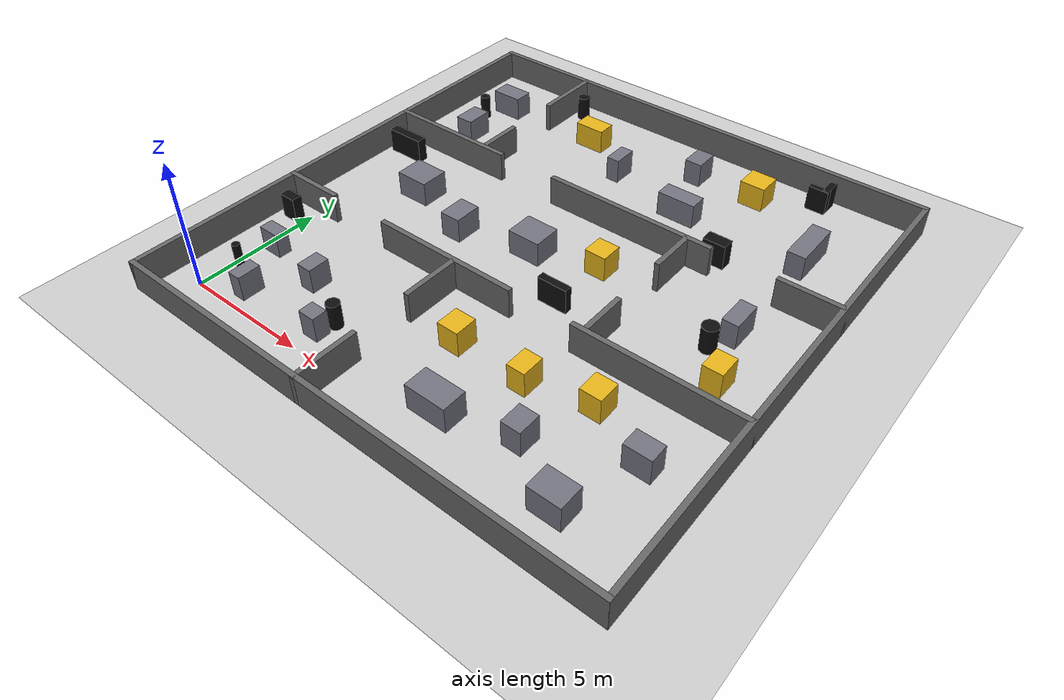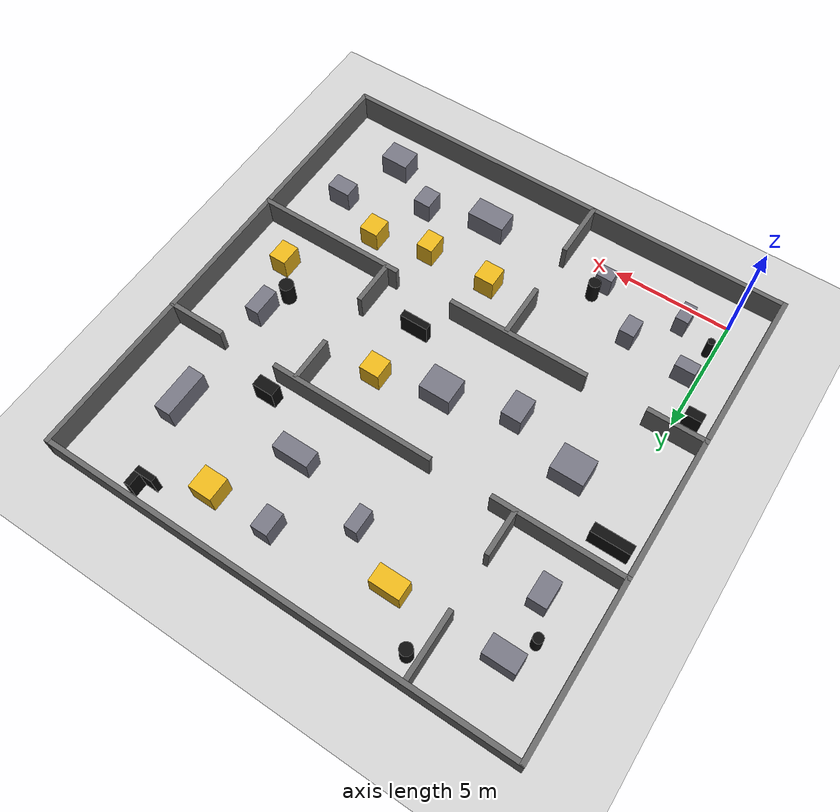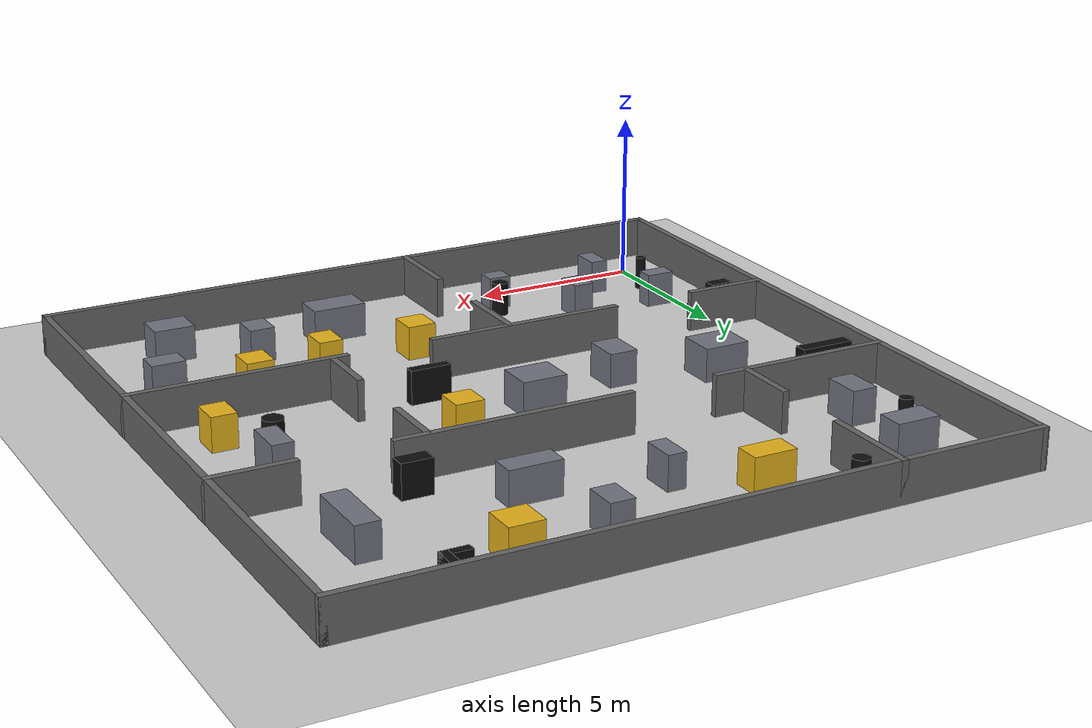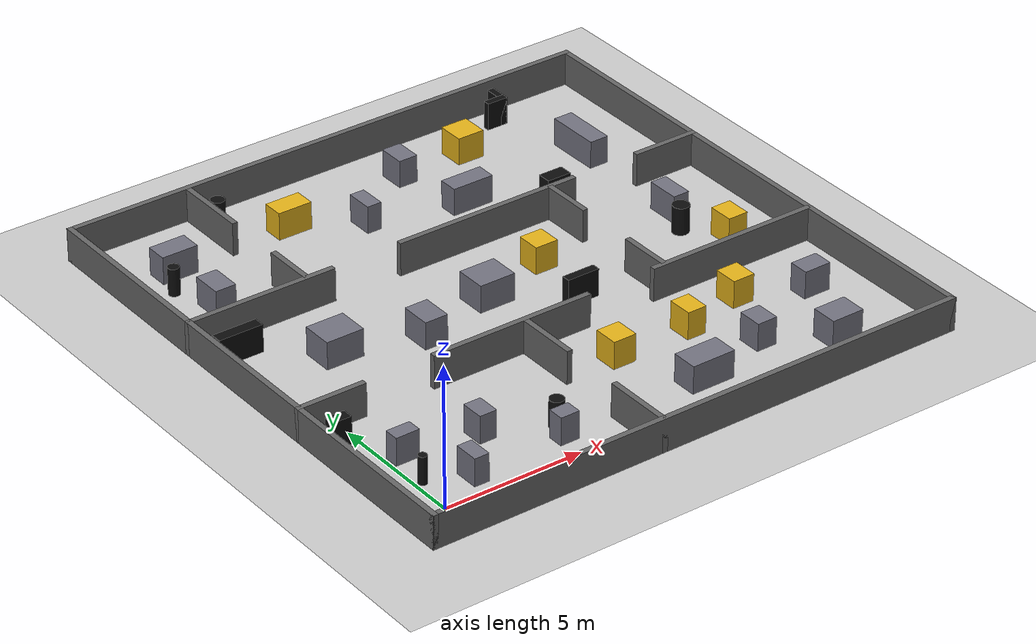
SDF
<?xml version="1.0"?>
<sdf version="1.8">
  <world name="bigarena">
    <physics name="10ms" type="ignored">
      <max_step_size>0.01</max_step_size>
      <real_time_factor>1.0</real_time_factor>
    </physics>
    <plugin filename="gz-sim-physics-system" name="gz::sim::systems::Physics"/>
    <plugin filename="gz-sim-user-commands-system" name="gz::sim::systems::UserCommands"/>
    <plugin filename="gz-sim-scene-broadcaster-system" name="gz::sim::systems::SceneBroadcaster"/>
    <plugin filename="gz-sim-sensors-system" name="gz::sim::systems::Sensors">
      <render_engine>ogre2</render_engine>
    </plugin>
    <light type="directional" name="sun">
      <cast_shadows>true</cast_shadows>
      <pose>0 0 10 0 0 0</pose>
      <diffuse>0.8 0.8 0.8 1</diffuse>
      <specular>0.2 0.2 0.2 1</specular>
      <direction>-0.5 0.1 -0.9</direction>
    </light>
    <model name="ground_plane">
      <static>true</static>
      <link name="link">
        <collision name="c">
          <geometry><plane><normal>0 0 1</normal><size>100 100</size></plane></geometry>
        </collision>
        <visual name="v">
          <geometry><plane><normal>0 0 1</normal><size>100 100</size></plane></geometry>
          <material><ambient>0.8 0.8 0.8 1</ambient><diffuse>0.8 0.8 0.8 1</diffuse></material>
        </visual>
      </link>
    </model>
    <model name="wall_0">
      <static>true</static>
      <pose>8.500 -1.400 0.600 0 0 0</pose>
      <link name="link">
        <collision name="c">
          <geometry><box><size>20.000 0.200 1.200</size></box></geometry>
        </collision>
        <visual name="v">
          <geometry><box><size>20.000 0.200 1.200</size></box></geometry>
          <material><ambient>0.4 0.4 0.4 1</ambient><diffuse>0.4 0.4 0.4 1</diffuse></material>
        </visual>
      </link>
    </model>
    <model name="wall_1">
      <static>true</static>
      <pose>8.500 18.400 0.600 0 0 0</pose>
      <link name="link">
        <collision name="c">
          <geometry><box><size>20.000 0.200 1.200</size></box></geometry>
        </collision>
        <visual name="v">
          <geometry><box><size>20.000 0.200 1.200</size></box></geometry>
          <material><ambient>0.4 0.4 0.4 1</ambient><diffuse>0.4 0.4 0.4 1</diffuse></material>
        </visual>
      </link>
    </model>
    <model name="wall_2">
      <static>true</static>
      <pose>-1.400 8.500 0.600 0 0 0</pose>
      <link name="link">
        <collision name="c">
          <geometry><box><size>0.200 20.000 1.200</size></box></geometry>
        </collision>
        <visual name="v">
          <geometry><box><size>0.200 20.000 1.200</size></box></geometry>
          <material><ambient>0.4 0.4 0.4 1</ambient><diffuse>0.4 0.4 0.4 1</diffuse></material>
        </visual>
      </link>
    </model>
    <model name="wall_3">
      <static>true</static>
      <pose>18.400 8.500 0.600 0 0 0</pose>
      <link name="link">
        <collision name="c">
          <geometry><box><size>0.200 20.000 1.200</size></box></geometry>
        </collision>
        <visual name="v">
          <geometry><box><size>0.200 20.000 1.200</size></box></geometry>
          <material><ambient>0.4 0.4 0.4 1</ambient><diffuse>0.4 0.4 0.4 1</diffuse></material>
        </visual>
      </link>
    </model>
    <model name="wall_4">
      <static>true</static>
      <pose>-0.250 5.500 0.600 0 0 0</pose>
      <link name="link">
        <collision name="c">
          <geometry><box><size>2.500 0.200 1.200</size></box></geometry>
        </collision>
        <visual name="v">
          <geometry><box><size>2.500 0.200 1.200</size></box></geometry>
          <material><ambient>0.4 0.4 0.4 1</ambient><diffuse>0.4 0.4 0.4 1</diffuse></material>
        </visual>
      </link>
    </model>
    <model name="wall_5">
      <static>true</static>
      <pose>6.500 5.500 0.600 0 0 0</pose>
      <link name="link">
        <collision name="c">
          <geometry><box><size>6.000 0.200 1.200</size></box></geometry>
        </collision>
        <visual name="v">
          <geometry><box><size>6.000 0.200 1.200</size></box></geometry>
          <material><ambient>0.4 0.4 0.4 1</ambient><diffuse>0.4 0.4 0.4 1</diffuse></material>
        </visual>
      </link>
    </model>
    <model name="wall_6">
      <static>true</static>
      <pose>15.250 5.500 0.600 0 0 0</pose>
      <link name="link">
        <collision name="c">
          <geometry><box><size>6.500 0.200 1.200</size></box></geometry>
        </collision>
        <visual name="v">
          <geometry><box><size>6.500 0.200 1.200</size></box></geometry>
          <material><ambient>0.4 0.4 0.4 1</ambient><diffuse>0.4 0.4 0.4 1</diffuse></material>
        </visual>
      </link>
    </model>
    <model name="wall_7">
      <static>true</static>
      <pose>1.250 11.500 0.600 0 0 0</pose>
      <link name="link">
        <collision name="c">
          <geometry><box><size>5.500 0.200 1.200</size></box></geometry>
        </collision>
        <visual name="v">
          <geometry><box><size>5.500 0.200 1.200</size></box></geometry>
          <material><ambient>0.4 0.4 0.4 1</ambient><diffuse>0.4 0.4 0.4 1</diffuse></material>
        </visual>
      </link>
    </model>
    <model name="wall_8">
      <static>true</static>
      <pose>10.000 11.500 0.600 0 0 0</pose>
      <link name="link">
        <collision name="c">
          <geometry><box><size>7.000 0.200 1.200</size></box></geometry>
        </collision>
        <visual name="v">
          <geometry><box><size>7.000 0.200 1.200</size></box></geometry>
          <material><ambient>0.4 0.4 0.4 1</ambient><diffuse>0.4 0.4 0.4 1</diffuse></material>
        </visual>
      </link>
    </model>
    <model name="wall_9">
      <static>true</static>
      <pose>17.250 11.500 0.600 0 0 0</pose>
      <link name="link">
        <collision name="c">
          <geometry><box><size>2.500 0.200 1.200</size></box></geometry>
        </collision>
        <visual name="v">
          <geometry><box><size>2.500 0.200 1.200</size></box></geometry>
          <material><ambient>0.4 0.4 0.4 1</ambient><diffuse>0.4 0.4 0.4 1</diffuse></material>
        </visual>
      </link>
    </model>
    <model name="wall_10">
      <static>true</static>
      <pose>7.000 -0.250 0.600 0 0 0</pose>
      <link name="link">
        <collision name="c">
          <geometry><box><size>0.200 2.500 1.200</size></box></geometry>
        </collision>
        <visual name="v">
          <geometry><box><size>0.200 2.500 1.200</size></box></geometry>
          <material><ambient>0.4 0.4 0.4 1</ambient><diffuse>0.4 0.4 0.4 1</diffuse></material>
        </visual>
      </link>
    </model>
    <model name="wall_11">
      <static>true</static>
      <pose>7.000 4.350 0.600 0 0 0</pose>
      <link name="link">
        <collision name="c">
          <geometry><box><size>0.200 2.300 1.200</size></box></geometry>
        </collision>
        <visual name="v">
          <geometry><box><size>0.200 2.300 1.200</size></box></geometry>
          <material><ambient>0.4 0.4 0.4 1</ambient><diffuse>0.4 0.4 0.4 1</diffuse></material>
        </visual>
      </link>
    </model>
    <model name="wall_12">
      <static>true</static>
      <pose>12.500 6.450 0.600 0 0 0</pose>
      <link name="link">
        <collision name="c">
          <geometry><box><size>0.200 1.900 1.200</size></box></geometry>
        </collision>
        <visual name="v">
          <geometry><box><size>0.200 1.900 1.200</size></box></geometry>
          <material><ambient>0.4 0.4 0.4 1</ambient><diffuse>0.4 0.4 0.4 1</diffuse></material>
        </visual>
      </link>
    </model>
    <model name="wall_13">
      <static>true</static>
      <pose>12.500 10.550 0.600 0 0 0</pose>
      <link name="link">
        <collision name="c">
          <geometry><box><size>0.200 1.900 1.200</size></box></geometry>
        </collision>
        <visual name="v">
          <geometry><box><size>0.200 1.900 1.200</size></box></geometry>
          <material><ambient>0.4 0.4 0.4 1</ambient><diffuse>0.4 0.4 0.4 1</diffuse></material>
        </visual>
      </link>
    </model>
    <model name="wall_14">
      <static>true</static>
      <pose>3.000 12.450 0.600 0 0 0</pose>
      <link name="link">
        <collision name="c">
          <geometry><box><size>0.200 1.900 1.200</size></box></geometry>
        </collision>
        <visual name="v">
          <geometry><box><size>0.200 1.900 1.200</size></box></geometry>
          <material><ambient>0.4 0.4 0.4 1</ambient><diffuse>0.4 0.4 0.4 1</diffuse></material>
        </visual>
      </link>
    </model>
    <model name="wall_15">
      <static>true</static>
      <pose>3.000 17.050 0.600 0 0 0</pose>
      <link name="link">
        <collision name="c">
          <geometry><box><size>0.200 2.900 1.200</size></box></geometry>
        </collision>
        <visual name="v">
          <geometry><box><size>0.200 2.900 1.200</size></box></geometry>
          <material><ambient>0.4 0.4 0.4 1</ambient><diffuse>0.4 0.4 0.4 1</diffuse></material>
        </visual>
      </link>
    </model>
    <model name="known_obs_0">
      <static>true</static>
      <pose>7.882 8.641 0.500 0 0 0</pose>
      <link name="link">
        <collision name="c">
          <geometry><box><size>1.324 1.116 1.000</size></box></geometry>
        </collision>
        <visual name="v">
          <geometry><box><size>1.324 1.116 1.000</size></box></geometry>
          <material><ambient>0.45 0.45 0.5 1</ambient><diffuse>0.45 0.45 0.5 1</diffuse></material>
        </visual>
      </link>
    </model>
    <model name="known_obs_1">
      <static>true</static>
      <pose>10.838 13.774 0.500 0 0 0</pose>
      <link name="link">
        <collision name="c">
          <geometry><box><size>1.540 0.703 1.000</size></box></geometry>
        </collision>
        <visual name="v">
          <geometry><box><size>1.540 0.703 1.000</size></box></geometry>
          <material><ambient>0.45 0.45 0.5 1</ambient><diffuse>0.45 0.45 0.5 1</diffuse></material>
        </visual>
      </link>
    </model>
    <model name="known_obs_2">
      <static>true</static>
      <pose>0.572 2.924 0.500 0 0 0</pose>
      <link name="link">
        <collision name="c">
          <geometry><box><size>0.852 0.517 1.000</size></box></geometry>
        </collision>
        <visual name="v">
          <geometry><box><size>0.852 0.517 1.000</size></box></geometry>
          <material><ambient>0.45 0.45 0.5 1</ambient><diffuse>0.45 0.45 0.5 1</diffuse></material>
        </visual>
      </link>
    </model>
    <model name="known_obs_3">
      <static>true</static>
      <pose>7.430 14.664 0.500 0 0 0</pose>
      <link name="link">
        <collision name="c">
          <geometry><box><size>0.533 0.987 1.000</size></box></geometry>
        </collision>
        <visual name="v">
          <geometry><box><size>0.533 0.987 1.000</size></box></geometry>
          <material><ambient>0.45 0.45 0.5 1</ambient><diffuse>0.45 0.45 0.5 1</diffuse></material>
        </visual>
      </link>
    </model>
    <model name="known_obs_4">
      <static>true</static>
      <pose>0.764 13.293 0.500 0 0 0</pose>
      <link name="link">
        <collision name="c">
          <geometry><box><size>0.753 1.104 1.000</size></box></geometry>
        </collision>
        <visual name="v">
          <geometry><box><size>0.753 1.104 1.000</size></box></geometry>
          <material><ambient>0.45 0.45 0.5 1</ambient><diffuse>0.45 0.45 0.5 1</diffuse></material>
        </visual>
      </link>
    </model>
    <model name="known_obs_5">
      <static>true</static>
      <pose>13.145 1.624 0.500 0 0 0</pose>
      <link name="link">
        <collision name="c">
          <geometry><box><size>0.739 0.866 1.000</size></box></geometry>
        </collision>
        <visual name="v">
          <geometry><box><size>0.739 0.866 1.000</size></box></geometry>
          <material><ambient>0.45 0.45 0.5 1</ambient><diffuse>0.45 0.45 0.5 1</diffuse></material>
        </visual>
      </link>
    </model>
    <model name="known_obs_6">
      <static>true</static>
      <pose>15.852 14.220 0.500 0 0 0</pose>
      <link name="link">
        <collision name="c">
          <geometry><box><size>0.701 1.986 1.000</size></box></geometry>
        </collision>
        <visual name="v">
          <geometry><box><size>0.701 1.986 1.000</size></box></geometry>
          <material><ambient>0.45 0.45 0.5 1</ambient><diffuse>0.45 0.45 0.5 1</diffuse></material>
        </visual>
      </link>
    </model>
    <model name="known_obs_7">
      <static>true</static>
      <pose>16.427 3.039 0.500 0 0 0</pose>
      <link name="link">
        <collision name="c">
          <geometry><box><size>0.999 0.709 1.000</size></box></geometry>
        </collision>
        <visual name="v">
          <geometry><box><size>0.999 0.709 1.000</size></box></geometry>
          <material><ambient>0.45 0.45 0.5 1</ambient><diffuse>0.45 0.45 0.5 1</diffuse></material>
        </visual>
      </link>
    </model>
    <model name="known_obs_8">
      <static>true</static>
      <pose>10.460 0.944 0.500 0 0 0</pose>
      <link name="link">
        <collision name="c">
          <geometry><box><size>1.600 0.921 1.000</size></box></geometry>
        </collision>
        <visual name="v">
          <geometry><box><size>1.600 0.921 1.000</size></box></geometry>
          <material><ambient>0.45 0.45 0.5 1</ambient><diffuse>0.45 0.45 0.5 1</diffuse></material>
        </visual>
      </link>
    </model>
    <model name="known_obs_9">
      <static>true</static>
      <pose>3.146 2.553 0.500 0 0 0</pose>
      <link name="link">
        <collision name="c">
          <geometry><box><size>0.618 0.831 1.000</size></box></geometry>
        </collision>
        <visual name="v">
          <geometry><box><size>0.618 0.831 1.000</size></box></geometry>
          <material><ambient>0.45 0.45 0.5 1</ambient><diffuse>0.45 0.45 0.5 1</diffuse></material>
        </visual>
      </link>
    </model>
    <model name="known_obs_10">
      <static>true</static>
      <pose>2.176 8.797 0.500 0 0 0</pose>
      <link name="link">
        <collision name="c">
          <geometry><box><size>1.367 1.136 1.000</size></box></geometry>
        </collision>
        <visual name="v">
          <geometry><box><size>1.367 1.136 1.000</size></box></geometry>
          <material><ambient>0.45 0.45 0.5 1</ambient><diffuse>0.45 0.45 0.5 1</diffuse></material>
        </visual>
      </link>
    </model>
    <model name="known_obs_11">
      <static>true</static>
      <pose>15.802 9.401 0.500 0 0 0</pose>
      <link name="link">
        <collision name="c">
          <geometry><box><size>0.608 1.201 1.000</size></box></geometry>
        </collision>
        <visual name="v">
          <geometry><box><size>0.608 1.201 1.000</size></box></geometry>
          <material><ambient>0.45 0.45 0.5 1</ambient><diffuse>0.45 0.45 0.5 1</diffuse></material>
        </visual>
      </link>
    </model>
    <model name="known_obs_12">
      <static>true</static>
      <pose>5.003 7.910 0.500 0 0 0</pose>
      <link name="link">
        <collision name="c">
          <geometry><box><size>0.842 1.098 1.000</size></box></geometry>
        </collision>
        <visual name="v">
          <geometry><box><size>0.842 1.098 1.000</size></box></geometry>
          <material><ambient>0.45 0.45 0.5 1</ambient><diffuse>0.45 0.45 0.5 1</diffuse></material>
        </visual>
      </link>
    </model>
    <model name="known_obs_13">
      <static>true</static>
      <pose>15.343 0.400 0.500 0 0 0</pose>
      <link name="link">
        <collision name="c">
          <geometry><box><size>1.196 0.923 1.000</size></box></geometry>
        </collision>
        <visual name="v">
          <geometry><box><size>1.196 0.923 1.000</size></box></geometry>
          <material><ambient>0.45 0.45 0.5 1</ambient><diffuse>0.45 0.45 0.5 1</diffuse></material>
        </visual>
      </link>
    </model>
    <model name="known_obs_14">
      <static>true</static>
      <pose>0.806 15.832 0.500 0 0 0</pose>
      <link name="link">
        <collision name="c">
          <geometry><box><size>1.307 0.789 1.000</size></box></geometry>
        </collision>
        <visual name="v">
          <geometry><box><size>1.307 0.789 1.000</size></box></geometry>
          <material><ambient>0.45 0.45 0.5 1</ambient><diffuse>0.45 0.45 0.5 1</diffuse></material>
        </visual>
      </link>
    </model>
    <model name="known_obs_15">
      <static>true</static>
      <pose>10.039 16.438 0.500 0 0 0</pose>
      <link name="link">
        <collision name="c">
          <geometry><box><size>0.703 0.970 1.000</size></box></geometry>
        </collision>
        <visual name="v">
          <geometry><box><size>0.703 0.970 1.000</size></box></geometry>
          <material><ambient>0.45 0.45 0.5 1</ambient><diffuse>0.45 0.45 0.5 1</diffuse></material>
        </visual>
      </link>
    </model>
    <model name="known_obs_16">
      <static>true</static>
      <pose>5.068 0.912 0.500 0 0 0</pose>
      <link name="link">
        <collision name="c">
          <geometry><box><size>0.682 0.571 1.000</size></box></geometry>
        </collision>
        <visual name="v">
          <geometry><box><size>0.682 0.571 1.000</size></box></geometry>
          <material><ambient>0.45 0.45 0.5 1</ambient><diffuse>0.45 0.45 0.5 1</diffuse></material>
        </visual>
      </link>
    </model>
    <model name="known_obs_17">
      <static>true</static>
      <pose>1.638 0.844 0.500 0 0 0</pose>
      <link name="link">
        <collision name="c">
          <geometry><box><size>0.529 0.881 1.000</size></box></geometry>
        </collision>
        <visual name="v">
          <geometry><box><size>0.529 0.881 1.000</size></box></geometry>
          <material><ambient>0.45 0.45 0.5 1</ambient><diffuse>0.45 0.45 0.5 1</diffuse></material>
        </visual>
      </link>
    </model>
    <model name="unknown_obs_0">
      <static>true</static>
      <pose>12.626 16.485 0.500 0 0 0</pose>
      <link name="link">
        <collision name="c">
          <geometry><box><size>0.998 0.973 1.000</size></box></geometry>
        </collision>
        <visual name="v">
          <geometry><box><size>0.998 0.973 1.000</size></box></geometry>
          <material><ambient>0.9 0.7 0.1 1</ambient><diffuse>0.9 0.7 0.1 1</diffuse></material>
        </visual>
      </link>
    </model>
    <model name="unknown_obs_1">
      <static>true</static>
      <pose>5.263 15.901 0.500 0 0 0</pose>
      <link name="link">
        <collision name="c">
          <geometry><box><size>1.259 0.756 1.000</size></box></geometry>
        </collision>
        <visual name="v">
          <geometry><box><size>1.259 0.756 1.000</size></box></geometry>
          <material><ambient>0.9 0.7 0.1 1</ambient><diffuse>0.9 0.7 0.1 1</diffuse></material>
        </visual>
      </link>
    </model>
    <model name="unknown_obs_2">
      <static>true</static>
      <pose>11.812 3.435 0.500 0 0 0</pose>
      <link name="link">
        <collision name="c">
          <geometry><box><size>0.704 0.883 1.000</size></box></geometry>
        </collision>
        <visual name="v">
          <geometry><box><size>0.704 0.883 1.000</size></box></geometry>
          <material><ambient>0.9 0.7 0.1 1</ambient><diffuse>0.9 0.7 0.1 1</diffuse></material>
        </visual>
      </link>
    </model>
    <model name="unknown_obs_3">
      <static>true</static>
      <pose>10.426 9.332 0.500 0 0 0</pose>
      <link name="link">
        <collision name="c">
          <geometry><box><size>0.850 0.859 1.000</size></box></geometry>
        </collision>
        <visual name="v">
          <geometry><box><size>0.850 0.859 1.000</size></box></geometry>
          <material><ambient>0.9 0.7 0.1 1</ambient><diffuse>0.9 0.7 0.1 1</diffuse></material>
        </visual>
      </link>
    </model>
    <model name="unknown_obs_4">
      <static>true</static>
      <pose>8.995 3.452 0.500 0 0 0</pose>
      <link name="link">
        <collision name="c">
          <geometry><box><size>0.847 0.881 1.000</size></box></geometry>
        </collision>
        <visual name="v">
          <geometry><box><size>0.847 0.881 1.000</size></box></geometry>
          <material><ambient>0.9 0.7 0.1 1</ambient><diffuse>0.9 0.7 0.1 1</diffuse></material>
        </visual>
      </link>
    </model>
    <model name="unknown_obs_5">
      <static>true</static>
      <pose>14.162 4.011 0.500 0 0 0</pose>
      <link name="link">
        <collision name="c">
          <geometry><box><size>0.804 0.862 1.000</size></box></geometry>
        </collision>
        <visual name="v">
          <geometry><box><size>0.804 0.862 1.000</size></box></geometry>
          <material><ambient>0.9 0.7 0.1 1</ambient><diffuse>0.9 0.7 0.1 1</diffuse></material>
        </visual>
      </link>
    </model>
    <model name="unknown_obs_6">
      <static>true</static>
      <pose>16.427 7.106 0.500 0 0 0</pose>
      <link name="link">
        <collision name="c">
          <geometry><box><size>0.744 0.905 1.000</size></box></geometry>
        </collision>
        <visual name="v">
          <geometry><box><size>0.744 0.905 1.000</size></box></geometry>
          <material><ambient>0.9 0.7 0.1 1</ambient><diffuse>0.9 0.7 0.1 1</diffuse></material>
        </visual>
      </link>
    </model>
    <model name="dyn_obs_0">
      <pose>5.275 1.571 0.500 0 0 0</pose>
      <link name="link">
        <kinematic>true</kinematic>
        <gravity>false</gravity>
        <inertial><mass>1.0</mass><inertia><ixx>0.1</ixx><iyy>0.1</iyy>
          <izz>0.1</izz><ixy>0</ixy><ixz>0</ixz><iyz>0</iyz></inertia></inertial>
        <collision name="c"><geometry><cylinder><radius>0.250</radius><length>1.0</length></cylinder></geometry></collision>
        <visual name="v"><geometry><cylinder><radius>0.250</radius><length>1.0</length></cylinder></geometry><material><ambient>0.05 0.05 0.05 1</ambient><diffuse>0.05 0.05 0.05 1</diffuse></material></visual>
      </link>
      <plugin filename="gz-sim-velocity-control-system"
              name="gz::sim::systems::VelocityControl"/>
      <plugin filename="gz-sim-pose-publisher-system"
              name="gz::sim::systems::PosePublisher">
        <publish_link_pose>false</publish_link_pose>
        <publish_model_pose>true</publish_model_pose>
        <use_pose_vector_msg>false</use_pose_vector_msg>
        <update_frequency>20</update_frequency>
      </plugin>
    </model>
    <model name="dyn_obs_1">
      <pose>-0.575 4.630 0.500 0 0 0</pose>
      <link name="link">
        <kinematic>true</kinematic>
        <gravity>false</gravity>
        <inertial><mass>1.0</mass><inertia><ixx>0.1</ixx><iyy>0.1</iyy>
          <izz>0.1</izz><ixy>0</ixy><ixz>0</ixz><iyz>0</iyz></inertia></inertial>
        <collision name="c"><geometry><box><size>0.700 0.400 1.000</size></box></geometry></collision>
        <visual name="v"><geometry><box><size>0.700 0.400 1.000</size></box></geometry><material><ambient>0.05 0.05 0.05 1</ambient><diffuse>0.05 0.05 0.05 1</diffuse></material></visual>
      </link>
      <plugin filename="gz-sim-velocity-control-system"
              name="gz::sim::systems::VelocityControl"/>
      <plugin filename="gz-sim-pose-publisher-system"
              name="gz::sim::systems::PosePublisher">
        <publish_link_pose>false</publish_link_pose>
        <publish_model_pose>true</publish_model_pose>
        <use_pose_vector_msg>false</use_pose_vector_msg>
        <update_frequency>20</update_frequency>
      </plugin>
    </model>
    <model name="dyn_obs_2">
      <pose>10.235 6.876 0.500 0 0 0</pose>
      <link name="link">
        <kinematic>true</kinematic>
        <gravity>false</gravity>
        <inertial><mass>1.0</mass><inertia><ixx>0.1</ixx><iyy>0.1</iyy>
          <izz>0.1</izz><ixy>0</ixy><ixz>0</ixz><iyz>0</iyz></inertia></inertial>
        <collision name="c"><geometry><box><size>1.200 0.300 1.000</size></box></geometry></collision>
        <visual name="v"><geometry><box><size>1.200 0.300 1.000</size></box></geometry><material><ambient>0.05 0.05 0.05 1</ambient><diffuse>0.05 0.05 0.05 1</diffuse></material></visual>
      </link>
      <plugin filename="gz-sim-velocity-control-system"
              name="gz::sim::systems::VelocityControl"/>
      <plugin filename="gz-sim-pose-publisher-system"
              name="gz::sim::systems::PosePublisher">
        <publish_link_pose>false</publish_link_pose>
        <publish_model_pose>true</publish_model_pose>
        <use_pose_vector_msg>false</use_pose_vector_msg>
        <update_frequency>20</update_frequency>
      </plugin>
    </model>
    <model name="dyn_obs_3">
      <pose>0.274 1.503 0.500 0 0 0</pose>
      <link name="link">
        <kinematic>true</kinematic>
        <gravity>false</gravity>
        <inertial><mass>1.0</mass><inertia><ixx>0.1</ixx><iyy>0.1</iyy>
          <izz>0.1</izz><ixy>0</ixy><ixz>0</ixz><iyz>0</iyz></inertia></inertial>
        <collision name="c"><geometry><cylinder><radius>0.150</radius><length>1.0</length></cylinder></geometry></collision>
        <visual name="v"><geometry><cylinder><radius>0.150</radius><length>1.0</length></cylinder></geometry><material><ambient>0.05 0.05 0.05 1</ambient><diffuse>0.05 0.05 0.05 1</diffuse></material></visual>
      </link>
      <plugin filename="gz-sim-velocity-control-system"
              name="gz::sim::systems::VelocityControl"/>
      <plugin filename="gz-sim-pose-publisher-system"
              name="gz::sim::systems::PosePublisher">
        <publish_link_pose>false</publish_link_pose>
        <publish_model_pose>true</publish_model_pose>
        <use_pose_vector_msg>false</use_pose_vector_msg>
        <update_frequency>20</update_frequency>
      </plugin>
    </model>
    <model name="dyn_obs_4">
      <pose>14.703 17.442 0.500 0 0 0</pose>
      <link name="link">
        <kinematic>true</kinematic>
        <gravity>false</gravity>
        <inertial><mass>1.0</mass><inertia><ixx>0.1</ixx><iyy>0.1</iyy>
          <izz>0.1</izz><ixy>0</ixy><ixz>0</ixz><iyz>0</iyz></inertia></inertial>
        <collision name="c1"><pose>0 0 0 0 0 0</pose>
          <geometry><box><size>0.800 0.250 1.000</size></box></geometry></collision>
        <visual name="v1"><pose>0 0 0 0 0 0</pose>
          <geometry><box><size>0.800 0.250 1.000</size></box></geometry><material><ambient>0.05 0.05 0.05 1</ambient><diffuse>0.05 0.05 0.05 1</diffuse></material></visual>
        <collision name="c2"><pose>0.275 0.275 0 0 0 0</pose>
          <geometry><box><size>0.250 0.800 1.000</size></box></geometry></collision>
        <visual name="v2"><pose>0.275 0.275 0 0 0 0</pose>
          <geometry><box><size>0.250 0.800 1.000</size></box></geometry><material><ambient>0.05 0.05 0.05 1</ambient><diffuse>0.05 0.05 0.05 1</diffuse></material></visual>
      </link>
      <plugin filename="gz-sim-velocity-control-system"
              name="gz::sim::systems::VelocityControl"/>
      <plugin filename="gz-sim-pose-publisher-system"
              name="gz::sim::systems::PosePublisher">
        <publish_link_pose>false</publish_link_pose>
        <publish_model_pose>true</publish_model_pose>
        <use_pose_vector_msg>false</use_pose_vector_msg>
        <update_frequency>20</update_frequency>
      </plugin>
    </model>
    <model name="dyn_obs_5">
      <pose>-0.293 10.477 0.500 0 0 0</pose>
      <link name="link">
        <kinematic>true</kinematic>
        <gravity>false</gravity>
        <inertial><mass>1.0</mass><inertia><ixx>0.1</ixx><iyy>0.1</iyy>
          <izz>0.1</izz><ixy>0</ixy><ixz>0</ixz><iyz>0</iyz></inertia></inertial>
        <collision name="c"><geometry><box><size>1.600 0.400 1.000</size></box></geometry></collision>
        <visual name="v"><geometry><box><size>1.600 0.400 1.000</size></box></geometry><material><ambient>0.05 0.05 0.05 1</ambient><diffuse>0.05 0.05 0.05 1</diffuse></material></visual>
      </link>
      <plugin filename="gz-sim-velocity-control-system"
              name="gz::sim::systems::VelocityControl"/>
      <plugin filename="gz-sim-pose-publisher-system"
              name="gz::sim::systems::PosePublisher">
        <publish_link_pose>false</publish_link_pose>
        <publish_model_pose>true</publish_model_pose>
        <use_pose_vector_msg>false</use_pose_vector_msg>
        <update_frequency>20</update_frequency>
      </plugin>
    </model>
    <model name="dyn_obs_6">
      <pose>3.552 17.457 0.500 0 0 0</pose>
      <link name="link">
        <kinematic>true</kinematic>
        <gravity>false</gravity>
        <inertial><mass>1.0</mass><inertia><ixx>0.1</ixx><iyy>0.1</iyy>
          <izz>0.1</izz><ixy>0</ixy><ixz>0</ixz><iyz>0</iyz></inertia></inertial>
        <collision name="c"><geometry><cylinder><radius>0.250</radius><length>1.0</length></cylinder></geometry></collision>
        <visual name="v"><geometry><cylinder><radius>0.250</radius><length>1.0</length></cylinder></geometry><material><ambient>0.05 0.05 0.05 1</ambient><diffuse>0.05 0.05 0.05 1</diffuse></material></visual>
      </link>
      <plugin filename="gz-sim-velocity-control-system"
              name="gz::sim::systems::VelocityControl"/>
      <plugin filename="gz-sim-pose-publisher-system"
              name="gz::sim::systems::PosePublisher">
        <publish_link_pose>false</publish_link_pose>
        <publish_model_pose>true</publish_model_pose>
        <use_pose_vector_msg>false</use_pose_vector_msg>
        <update_frequency>20</update_frequency>
      </plugin>
    </model>
    <model name="dyn_obs_7">
      <pose>15.386 8.304 0.500 0 0 0</pose>
      <link name="link">
        <kinematic>true</kinematic>
        <gravity>false</gravity>
        <inertial><mass>1.0</mass><inertia><ixx>0.1</ixx><iyy>0.1</iyy>
          <izz>0.1</izz><ixy>0</ixy><ixz>0</ixz><iyz>0</iyz></inertia></inertial>
        <collision name="c"><geometry><cylinder><radius>0.300</radius><length>1.0</length></cylinder></geometry></collision>
        <visual name="v"><geometry><cylinder><radius>0.300</radius><length>1.0</length></cylinder></geometry><material><ambient>0.05 0.05 0.05 1</ambient><diffuse>0.05 0.05 0.05 1</diffuse></material></visual>
      </link>
      <plugin filename="gz-sim-velocity-control-system"
              name="gz::sim::systems::VelocityControl"/>
      <plugin filename="gz-sim-pose-publisher-system"
              name="gz::sim::systems::PosePublisher">
        <publish_link_pose>false</publish_link_pose>
        <publish_model_pose>true</publish_model_pose>
        <use_pose_vector_msg>false</use_pose_vector_msg>
        <update_frequency>20</update_frequency>
      </plugin>
    </model>
    <model name="dyn_obs_8">
      <pose>13.297 12.283 0.500 0 0 0</pose>
      <link name="link">
        <kinematic>true</kinematic>
        <gravity>false</gravity>
        <inertial><mass>1.0</mass><inertia><ixx>0.1</ixx><iyy>0.1</iyy>
          <izz>0.1</izz><ixy>0</ixy><ixz>0</ixz><iyz>0</iyz></inertia></inertial>
        <collision name="c"><geometry><box><size>0.900 0.500 1.000</size></box></geometry></collision>
        <visual name="v"><geometry><box><size>0.900 0.500 1.000</size></box></geometry><material><ambient>0.05 0.05 0.05 1</ambient><diffuse>0.05 0.05 0.05 1</diffuse></material></visual>
      </link>
      <plugin filename="gz-sim-velocity-control-system"
              name="gz::sim::systems::VelocityControl"/>
      <plugin filename="gz-sim-pose-publisher-system"
              name="gz::sim::systems::PosePublisher">
        <publish_link_pose>false</publish_link_pose>
        <publish_model_pose>true</publish_model_pose>
        <use_pose_vector_msg>false</use_pose_vector_msg>
        <update_frequency>20</update_frequency>
      </plugin>
    </model>
    <model name="dyn_obs_9">
      <pose>0.142 14.797 0.500 0 0 0</pose>
      <link name="link">
        <kinematic>true</kinematic>
        <gravity>false</gravity>
        <inertial><mass>1.0</mass><inertia><ixx>0.1</ixx><iyy>0.1</iyy>
          <izz>0.1</izz><ixy>0</ixy><ixz>0</ixz><iyz>0</iyz></inertia></inertial>
        <collision name="c"><geometry><cylinder><radius>0.200</radius><length>1.0</length></cylinder></geometry></collision>
        <visual name="v"><geometry><cylinder><radius>0.200</radius><length>1.0</length></cylinder></geometry><material><ambient>0.05 0.05 0.05 1</ambient><diffuse>0.05 0.05 0.05 1</diffuse></material></visual>
      </link>
      <plugin filename="gz-sim-velocity-control-system"
              name="gz::sim::systems::VelocityControl"/>
      <plugin filename="gz-sim-pose-publisher-system"
              name="gz::sim::systems::PosePublisher">
        <publish_link_pose>false</publish_link_pose>
        <publish_model_pose>true</publish_model_pose>
        <use_pose_vector_msg>false</use_pose_vector_msg>
        <update_frequency>20</update_frequency>
      </plugin>
    </model>
  </world>
</sdf>
